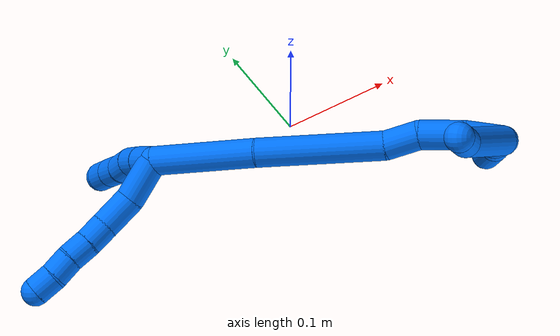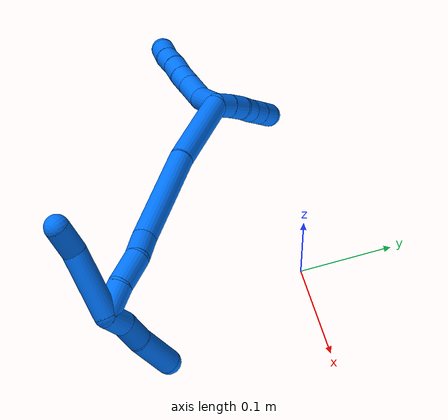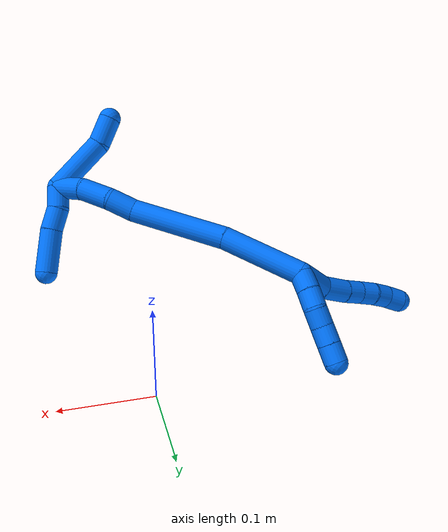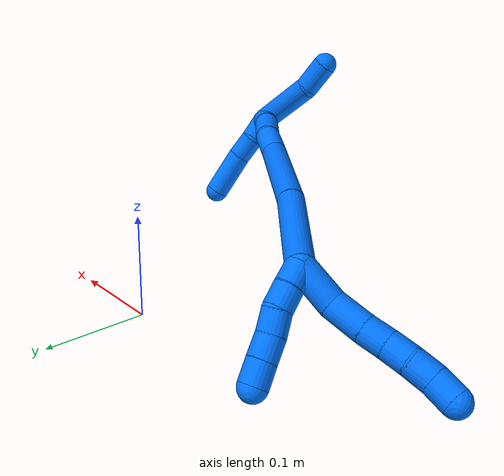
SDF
<sdf version="1.7">
 <world name="default">
  <model name="14">
   <static>0</static>
   <link name="14">
    <collision name="collision-cylinder-e_1_2_8">
     <pose>-0.015754 -0.00605 -0.00892 2.5456 -0.970764 -2.087</pose>
     <geometry><cylinder><radius>0.0125</radius><length>0.038177</length></cylinder></geometry>
     <surface>
      <friction><ode><mu>1.16</mu><mu2>1.16</mu2><slip1>0</slip1><slip2>0</slip2></ode></friction>
      <contact><ode><kp>1e+06</kp><kd>1</kd><max_vel>0</max_vel><min_depth>0.001</min_depth></ode></contact>
     </surface>
    </collision>
    <visual name="visual-cylinder-e_1_2_8">
     <pose>-0.015754 -0.00605 -0.00892 2.5456 -0.970764 -2.087</pose>
     <geometry><cylinder><radius>0.0125</radius><length>0.038177</length></cylinder></geometry>
     <material><ambient>0 0.462745 1 1</ambient></material>
    </visual>
    <collision name="collision-cylinder-e_2_8_9">
     <pose>-0.045141 -0.012023 -0.025442 -3.13133 -1.06214 3.12412</pose>
     <geometry><cylinder><radius>0.0125</radius><length>0.031219</length></cylinder></geometry>
     <surface>
      <friction><ode><mu>1.16</mu><mu2>1.16</mu2><slip1>0</slip1><slip2>0</slip2></ode></friction>
      <contact><ode><kp>1e+06</kp><kd>1</kd><max_vel>0</max_vel><min_depth>0.001</min_depth></ode></contact>
     </surface>
    </collision>
    <visual name="visual-cylinder-e_2_8_9">
     <pose>-0.045141 -0.012023 -0.025442 -3.13133 -1.06214 3.12412</pose>
     <geometry><cylinder><radius>0.0125</radius><length>0.031219</length></cylinder></geometry>
     <material><ambient>0 0.462745 1 1</ambient></material>
    </visual>
    <collision name="collision-cylinder-e_3_9_10">
     <pose>-0.067905 -0.011297 -0.037604 -3.00062 -1.10352 2.91319</pose>
     <geometry><cylinder><radius>0.0125</radius><length>0.020453</length></cylinder></geometry>
     <surface>
      <friction><ode><mu>1.16</mu><mu2>1.16</mu2><slip1>0</slip1><slip2>0</slip2></ode></friction>
      <contact><ode><kp>1e+06</kp><kd>1</kd><max_vel>0</max_vel><min_depth>0.001</min_depth></ode></contact>
     </surface>
    </collision>
    <visual name="visual-cylinder-e_3_9_10">
     <pose>-0.067905 -0.011297 -0.037604 -3.00062 -1.10352 2.91319</pose>
     <geometry><cylinder><radius>0.0125</radius><length>0.020453</length></cylinder></geometry>
     <material><ambient>0 0.462745 1 1</ambient></material>
    </visual>
    <collision name="collision-cylinder-e_4_10_11">
     <pose>-0.085557 -0.009597 -0.047339 -2.94069 -1.01611 2.78343</pose>
     <geometry><cylinder><radius>0.0125</radius><length>0.020049</length></cylinder></geometry>
     <surface>
      <friction><ode><mu>1.16</mu><mu2>1.16</mu2><slip1>0</slip1><slip2>0</slip2></ode></friction>
      <contact><ode><kp>1e+06</kp><kd>1</kd><max_vel>0</max_vel><min_depth>0.001</min_depth></ode></contact>
     </surface>
    </collision>
    <visual name="visual-cylinder-e_4_10_11">
     <pose>-0.085557 -0.009597 -0.047339 -2.94069 -1.01611 2.78343</pose>
     <geometry><cylinder><radius>0.0125</radius><length>0.020049</length></cylinder></geometry>
     <material><ambient>0 0.462745 1 1</ambient></material>
    </visual>
    <collision name="collision-cylinder-e_5_11_12">
     <pose>-0.102903 -0.00882 -0.057228 3.08286 -1.07933 -3.04359</pose>
     <geometry><cylinder><radius>0.0125</radius><length>0.020018</length></cylinder></geometry>
     <surface>
      <friction><ode><mu>1.16</mu><mu2>1.16</mu2><slip1>0</slip1><slip2>0</slip2></ode></friction>
      <contact><ode><kp>1e+06</kp><kd>1</kd><max_vel>0</max_vel><min_depth>0.001</min_depth></ode></contact>
     </surface>
    </collision>
    <visual name="visual-cylinder-e_5_11_12">
     <pose>-0.102903 -0.00882 -0.057228 3.08286 -1.07933 -3.04359</pose>
     <geometry><cylinder><radius>0.0125</radius><length>0.020018</length></cylinder></geometry>
     <material><ambient>0 0.462745 1 1</ambient></material>
    </visual>
    <collision name="collision-cylinder-e_6_12_6">
     <pose>-0.11958 -0.009258 -0.068199 3.11593 -0.897967 -3.08835</pose>
     <geometry><cylinder><radius>0.0125</radius><length>0.020084</length></cylinder></geometry>
     <surface>
      <friction><ode><mu>1.16</mu><mu2>1.16</mu2><slip1>0</slip1><slip2>0</slip2></ode></friction>
      <contact><ode><kp>1e+06</kp><kd>1</kd><max_vel>0</max_vel><min_depth>0.001</min_depth></ode></contact>
     </surface>
    </collision>
    <visual name="visual-cylinder-e_6_12_6">
     <pose>-0.11958 -0.009258 -0.068199 3.11593 -0.897967 -3.08835</pose>
     <geometry><cylinder><radius>0.0125</radius><length>0.020084</length></cylinder></geometry>
     <material><ambient>0 0.462745 1 1</ambient></material>
    </visual>
    <collision name="collision-cylinder-e_1_2_13">
     <pose>0.002167 -0.003741 -0.009017 2.7483 0.218418 1.00625</pose>
     <geometry><cylinder><radius>0.0125</radius><length>0.02</length></cylinder></geometry>
     <surface>
      <friction><ode><mu>1.16</mu><mu2>1.16</mu2><slip1>0</slip1><slip2>0</slip2></ode></friction>
      <contact><ode><kp>1e+06</kp><kd>1</kd><max_vel>0</max_vel><min_depth>0.001</min_depth></ode></contact>
     </surface>
    </collision>
    <visual name="visual-cylinder-e_1_2_13">
     <pose>0.002167 -0.003741 -0.009017 2.7483 0.218418 1.00625</pose>
     <geometry><cylinder><radius>0.0125</radius><length>0.02</length></cylinder></geometry>
     <material><ambient>0 0.462745 1 1</ambient></material>
    </visual>
    <collision name="collision-cylinder-e_2_13_14">
     <pose>0.006266 -0.01191 -0.02679 2.67342 0.19441 0.776367</pose>
     <geometry><cylinder><radius>0.0125</radius><length>0.02</length></cylinder></geometry>
     <surface>
      <friction><ode><mu>1.16</mu><mu2>1.16</mu2><slip1>0</slip1><slip2>0</slip2></ode></friction>
      <contact><ode><kp>1e+06</kp><kd>1</kd><max_vel>0</max_vel><min_depth>0.001</min_depth></ode></contact>
     </surface>
    </collision>
    <visual name="visual-cylinder-e_2_13_14">
     <pose>0.006266 -0.01191 -0.02679 2.67342 0.19441 0.776367</pose>
     <geometry><cylinder><radius>0.0125</radius><length>0.02</length></cylinder></geometry>
     <material><ambient>0 0.462745 1 1</ambient></material>
    </visual>
    <collision name="collision-cylinder-e_3_14_15">
     <pose>0.007897 -0.021877 -0.043866 2.55425 -0.030055 -0.099309</pose>
     <geometry><cylinder><radius>0.0125</radius><length>0.02</length></cylinder></geometry>
     <surface>
      <friction><ode><mu>1.16</mu><mu2>1.16</mu2><slip1>0</slip1><slip2>0</slip2></ode></friction>
      <contact><ode><kp>1e+06</kp><kd>1</kd><max_vel>0</max_vel><min_depth>0.001</min_depth></ode></contact>
     </surface>
    </collision>
    <visual name="visual-cylinder-e_3_14_15">
     <pose>0.007897 -0.021877 -0.043866 2.55425 -0.030055 -0.099309</pose>
     <geometry><cylinder><radius>0.0125</radius><length>0.02</length></cylinder></geometry>
     <material><ambient>0 0.462745 1 1</ambient></material>
    </visual>
    <collision name="collision-cylinder-e_4_15_16">
     <pose>0.008387 -0.032344 -0.060852 2.62441 0.079127 0.297094</pose>
     <geometry><cylinder><radius>0.0125</radius><length>0.02</length></cylinder></geometry>
     <surface>
      <friction><ode><mu>1.16</mu><mu2>1.16</mu2><slip1>0</slip1><slip2>0</slip2></ode></friction>
      <contact><ode><kp>1e+06</kp><kd>1</kd><max_vel>0</max_vel><min_depth>0.001</min_depth></ode></contact>
     </surface>
    </collision>
    <visual name="visual-cylinder-e_4_15_16">
     <pose>0.008387 -0.032344 -0.060852 2.62441 0.079127 0.297094</pose>
     <geometry><cylinder><radius>0.0125</radius><length>0.02</length></cylinder></geometry>
     <material><ambient>0 0.462745 1 1</ambient></material>
    </visual>
    <collision name="collision-cylinder-e_5_16_5">
     <pose>0.009789 -0.04236 -0.078104 2.60682 0.061175 0.222462</pose>
     <geometry><cylinder><radius>0.0125</radius><length>0.02</length></cylinder></geometry>
     <surface>
      <friction><ode><mu>1.16</mu><mu2>1.16</mu2><slip1>0</slip1><slip2>0</slip2></ode></friction>
      <contact><ode><kp>1e+06</kp><kd>1</kd><max_vel>0</max_vel><min_depth>0.001</min_depth></ode></contact>
     </surface>
    </collision>
    <visual name="visual-cylinder-e_5_16_5">
     <pose>0.009789 -0.04236 -0.078104 2.60682 0.061175 0.222462</pose>
     <geometry><cylinder><radius>0.0125</radius><length>0.02</length></cylinder></geometry>
     <material><ambient>0 0.462745 1 1</ambient></material>
    </visual>
    <collision name="collision-cylinder-e_1_2_17">
     <pose>0.010763 -0.007843 0.043682 0.177651 0.237918 0.021289</pose>
     <geometry><cylinder><radius>0.0125</radius><length>0.091334</length></cylinder></geometry>
     <surface>
      <friction><ode><mu>1.16</mu><mu2>1.16</mu2><slip1>0</slip1><slip2>0</slip2></ode></friction>
      <contact><ode><kp>1e+06</kp><kd>1</kd><max_vel>0</max_vel><min_depth>0.001</min_depth></ode></contact>
     </surface>
    </collision>
    <visual name="visual-cylinder-e_1_2_17">
     <pose>0.010763 -0.007843 0.043682 0.177651 0.237918 0.021289</pose>
     <geometry><cylinder><radius>0.0125</radius><length>0.091334</length></cylinder></geometry>
     <material><ambient>0 0.462745 1 1</ambient></material>
    </visual>
    <collision name="collision-cylinder-e_2_17_18">
     <pose>0.037089 -0.031545 0.137177 0.308236 0.28935 0.045259</pose>
     <geometry><cylinder><radius>0.0125</radius><length>0.109088</length></cylinder></geometry>
     <surface>
      <friction><ode><mu>1.16</mu><mu2>1.16</mu2><slip1>0</slip1><slip2>0</slip2></ode></friction>
      <contact><ode><kp>1e+06</kp><kd>1</kd><max_vel>0</max_vel><min_depth>0.001</min_depth></ode></contact>
     </surface>
    </collision>
    <visual name="visual-cylinder-e_2_17_18">
     <pose>0.037089 -0.031545 0.137177 0.308236 0.28935 0.045259</pose>
     <geometry><cylinder><radius>0.0125</radius><length>0.109088</length></cylinder></geometry>
     <material><ambient>0 0.462745 1 1</ambient></material>
    </visual>
    <collision name="collision-cylinder-e_3_18_19">
     <pose>0.059059 -0.048446 0.200475 0.07702 0.442448 0.01733</pose>
     <geometry><cylinder><radius>0.0125</radius><length>0.029932</length></cylinder></geometry>
     <surface>
      <friction><ode><mu>1.16</mu><mu2>1.16</mu2><slip1>0</slip1><slip2>0</slip2></ode></friction>
      <contact><ode><kp>1e+06</kp><kd>1</kd><max_vel>0</max_vel><min_depth>0.001</min_depth></ode></contact>
     </surface>
    </collision>
    <visual name="visual-cylinder-e_3_18_19">
     <pose>0.059059 -0.048446 0.200475 0.07702 0.442448 0.01733</pose>
     <geometry><cylinder><radius>0.0125</radius><length>0.029932</length></cylinder></geometry>
     <material><ambient>0 0.462745 1 1</ambient></material>
    </visual>
    <collision name="collision-cylinder-e_4_19_20">
     <pose>0.069123 -0.054418 0.231256 0.277771 0.200538 0.028125</pose>
     <geometry><cylinder><radius>0.0125</radius><length>0.036706</length></cylinder></geometry>
     <surface>
      <friction><ode><mu>1.16</mu><mu2>1.16</mu2><slip1>0</slip1><slip2>0</slip2></ode></friction>
      <contact><ode><kp>1e+06</kp><kd>1</kd><max_vel>0</max_vel><min_depth>0.001</min_depth></ode></contact>
     </surface>
    </collision>
    <visual name="visual-cylinder-e_4_19_20">
     <pose>0.069123 -0.054418 0.231256 0.277771 0.200538 0.028125</pose>
     <geometry><cylinder><radius>0.0125</radius><length>0.036706</length></cylinder></geometry>
     <material><ambient>0 0.462745 1 1</ambient></material>
    </visual>
    <collision name="collision-cylinder-e_5_20_1">
     <pose>0.075895 -0.067576 0.262475 0.533615 0.190339 0.05217</pose>
     <geometry><cylinder><radius>0.0125</radius><length>0.03294</length></cylinder></geometry>
     <surface>
      <friction><ode><mu>1.16</mu><mu2>1.16</mu2><slip1>0</slip1><slip2>0</slip2></ode></friction>
      <contact><ode><kp>1e+06</kp><kd>1</kd><max_vel>0</max_vel><min_depth>0.001</min_depth></ode></contact>
     </surface>
    </collision>
    <visual name="visual-cylinder-e_5_20_1">
     <pose>0.075895 -0.067576 0.262475 0.533615 0.190339 0.05217</pose>
     <geometry><cylinder><radius>0.0125</radius><length>0.03294</length></cylinder></geometry>
     <material><ambient>0 0.462745 1 1</ambient></material>
    </visual>
    <collision name="collision-cylinder-e_1_1_21">
     <pose>0.059758 -0.047519 0.276843 -1.55511 -0.597599 0.588829</pose>
     <geometry><cylinder><radius>0.0125</radius><length>0.068434</length></cylinder></geometry>
     <surface>
      <friction><ode><mu>1.16</mu><mu2>1.16</mu2><slip1>0</slip1><slip2>0</slip2></ode></friction>
      <contact><ode><kp>1e+06</kp><kd>1</kd><max_vel>0</max_vel><min_depth>0.001</min_depth></ode></contact>
     </surface>
    </collision>
    <visual name="visual-cylinder-e_1_1_21">
     <pose>0.059758 -0.047519 0.276843 -1.55511 -0.597599 0.588829</pose>
     <geometry><cylinder><radius>0.0125</radius><length>0.068434</length></cylinder></geometry>
     <material><ambient>0 0.462745 1 1</ambient></material>
    </visual>
    <collision name="collision-cylinder-e_2_21_4">
     <pose>0.034234 -0.005621 0.282228 -1.22263 -0.408687 0.288476</pose>
     <geometry><cylinder><radius>0.0125</radius><length>0.031566</length></cylinder></geometry>
     <surface>
      <friction><ode><mu>1.16</mu><mu2>1.16</mu2><slip1>0</slip1><slip2>0</slip2></ode></friction>
      <contact><ode><kp>1e+06</kp><kd>1</kd><max_vel>0</max_vel><min_depth>0.001</min_depth></ode></contact>
     </surface>
    </collision>
    <visual name="visual-cylinder-e_2_21_4">
     <pose>0.034234 -0.005621 0.282228 -1.22263 -0.408687 0.288476</pose>
     <geometry><cylinder><radius>0.0125</radius><length>0.031566</length></cylinder></geometry>
     <material><ambient>0 0.462745 1 1</ambient></material>
    </visual>
    <collision name="collision-cylinder-e_1_1_22">
     <pose>0.082691 -0.084225 0.267776 2.36795 0.296335 0.702468</pose>
     <geometry><cylinder><radius>0.0125</radius><length>0.025209</length></cylinder></geometry>
     <surface>
      <friction><ode><mu>1.16</mu><mu2>1.16</mu2><slip1>0</slip1><slip2>0</slip2></ode></friction>
      <contact><ode><kp>1e+06</kp><kd>1</kd><max_vel>0</max_vel><min_depth>0.001</min_depth></ode></contact>
     </surface>
    </collision>
    <visual name="visual-cylinder-e_1_1_22">
     <pose>0.082691 -0.084225 0.267776 2.36795 0.296335 0.702468</pose>
     <geometry><cylinder><radius>0.0125</radius><length>0.025209</length></cylinder></geometry>
     <material><ambient>0 0.462745 1 1</ambient></material>
    </visual>
    <collision name="collision-cylinder-e_2_22_23">
     <pose>0.091335 -0.103126 0.253514 2.06444 0.395202 0.646657</pose>
     <geometry><cylinder><radius>0.0125</radius><length>0.025783</length></cylinder></geometry>
     <surface>
      <friction><ode><mu>1.16</mu><mu2>1.16</mu2><slip1>0</slip1><slip2>0</slip2></ode></friction>
      <contact><ode><kp>1e+06</kp><kd>1</kd><max_vel>0</max_vel><min_depth>0.001</min_depth></ode></contact>
     </surface>
    </collision>
    <visual name="visual-cylinder-e_2_22_23">
     <pose>0.091335 -0.103126 0.253514 2.06444 0.395202 0.646657</pose>
     <geometry><cylinder><radius>0.0125</radius><length>0.025783</length></cylinder></geometry>
     <material><ambient>0 0.462745 1 1</ambient></material>
    </visual>
    <collision name="collision-cylinder-e_3_23_3">
     <pose>0.103719 -0.132182 0.233727 2.22167 0.307663 0.606666</pose>
     <geometry><cylinder><radius>0.0125</radius><length>0.049008</length></cylinder></geometry>
     <surface>
      <friction><ode><mu>1.16</mu><mu2>1.16</mu2><slip1>0</slip1><slip2>0</slip2></ode></friction>
      <contact><ode><kp>1e+06</kp><kd>1</kd><max_vel>0</max_vel><min_depth>0.001</min_depth></ode></contact>
     </surface>
    </collision>
    <visual name="visual-cylinder-e_3_23_3">
     <pose>0.103719 -0.132182 0.233727 2.22167 0.307663 0.606666</pose>
     <geometry><cylinder><radius>0.0125</radius><length>0.049008</length></cylinder></geometry>
     <material><ambient>0 0.462745 1 1</ambient></material>
    </visual>
    <collision name="collision-sphere-3">
     <pose>0.11114 -0.150761 0.219578 0 -0 0</pose>
     <geometry><sphere><radius>0.0125</radius></sphere></geometry>
     <surface>
      <friction><ode><mu>1.16</mu><mu2>1.16</mu2><slip1>0</slip1><slip2>0</slip2></ode></friction>
      <contact><ode><kp>1e+06</kp><kd>1</kd><max_vel>0</max_vel><min_depth>0.001</min_depth></ode></contact>
     </surface>
    </collision>
    <visual name="visual-sphere-3">
     <pose>0.11114 -0.150761 0.219578 0 -0 0</pose>
     <geometry><sphere><radius>0.0125</radius></sphere></geometry>
     <material><ambient>0 0.462745 1 1</ambient></material>
    </visual>
    <collision name="collision-sphere-23">
     <pose>0.096298 -0.113603 0.247877 0 -0 0</pose>
     <geometry><sphere><radius>0.0125</radius></sphere></geometry>
     <surface>
      <friction><ode><mu>1.16</mu><mu2>1.16</mu2><slip1>0</slip1><slip2>0</slip2></ode></friction>
      <contact><ode><kp>1e+06</kp><kd>1</kd><max_vel>0</max_vel><min_depth>0.001</min_depth></ode></contact>
     </surface>
    </collision>
    <visual name="visual-sphere-23">
     <pose>0.096298 -0.113603 0.247877 0 -0 0</pose>
     <geometry><sphere><radius>0.0125</radius></sphere></geometry>
     <material><ambient>0 0.462745 1 1</ambient></material>
    </visual>
    <collision name="collision-sphere-22">
     <pose>0.086372 -0.092648 0.259152 0 -0 0</pose>
     <geometry><sphere><radius>0.0125</radius></sphere></geometry>
     <surface>
      <friction><ode><mu>1.16</mu><mu2>1.16</mu2><slip1>0</slip1><slip2>0</slip2></ode></friction>
      <contact><ode><kp>1e+06</kp><kd>1</kd><max_vel>0</max_vel><min_depth>0.001</min_depth></ode></contact>
     </surface>
    </collision>
    <visual name="visual-sphere-22">
     <pose>0.086372 -0.092648 0.259152 0 -0 0</pose>
     <geometry><sphere><radius>0.0125</radius></sphere></geometry>
     <material><ambient>0 0.462745 1 1</ambient></material>
    </visual>
    <collision name="collision-sphere-4">
     <pose>0.027961 0.007993 0.287169 0 -0 0</pose>
     <geometry><sphere><radius>0.0125</radius></sphere></geometry>
     <surface>
      <friction><ode><mu>1.16</mu><mu2>1.16</mu2><slip1>0</slip1><slip2>0</slip2></ode></friction>
      <contact><ode><kp>1e+06</kp><kd>1</kd><max_vel>0</max_vel><min_depth>0.001</min_depth></ode></contact>
     </surface>
    </collision>
    <visual name="visual-sphere-4">
     <pose>0.027961 0.007993 0.287169 0 -0 0</pose>
     <geometry><sphere><radius>0.0125</radius></sphere></geometry>
     <material><ambient>0 0.462745 1 1</ambient></material>
    </visual>
    <collision name="collision-sphere-21">
     <pose>0.040506 -0.019235 0.277287 0 -0 0</pose>
     <geometry><sphere><radius>0.0125</radius></sphere></geometry>
     <surface>
      <friction><ode><mu>1.16</mu><mu2>1.16</mu2><slip1>0</slip1><slip2>0</slip2></ode></friction>
      <contact><ode><kp>1e+06</kp><kd>1</kd><max_vel>0</max_vel><min_depth>0.001</min_depth></ode></contact>
     </surface>
    </collision>
    <visual name="visual-sphere-21">
     <pose>0.040506 -0.019235 0.277287 0 -0 0</pose>
     <geometry><sphere><radius>0.0125</radius></sphere></geometry>
     <material><ambient>0 0.462745 1 1</ambient></material>
    </visual>
    <collision name="collision-sphere-1">
     <pose>0.079011 -0.075802 0.276399 0 -0 0</pose>
     <geometry><sphere><radius>0.0125</radius></sphere></geometry>
     <surface>
      <friction><ode><mu>1.16</mu><mu2>1.16</mu2><slip1>0</slip1><slip2>0</slip2></ode></friction>
      <contact><ode><kp>1e+06</kp><kd>1</kd><max_vel>0</max_vel><min_depth>0.001</min_depth></ode></contact>
     </surface>
    </collision>
    <visual name="visual-sphere-1">
     <pose>0.079011 -0.075802 0.276399 0 -0 0</pose>
     <geometry><sphere><radius>0.0125</radius></sphere></geometry>
     <material><ambient>0 0.462745 1 1</ambient></material>
    </visual>
    <collision name="collision-sphere-12">
     <pose>-0.111727 -0.009097 -0.061943 0 -0 0</pose>
     <geometry><sphere><radius>0.0125</radius></sphere></geometry>
     <surface>
      <friction><ode><mu>1.16</mu><mu2>1.16</mu2><slip1>0</slip1><slip2>0</slip2></ode></friction>
      <contact><ode><kp>1e+06</kp><kd>1</kd><max_vel>0</max_vel><min_depth>0.001</min_depth></ode></contact>
     </surface>
    </collision>
    <visual name="visual-sphere-12">
     <pose>-0.111727 -0.009097 -0.061943 0 -0 0</pose>
     <geometry><sphere><radius>0.0125</radius></sphere></geometry>
     <material><ambient>0 0.462745 1 1</ambient></material>
    </visual>
    <collision name="collision-sphere-11">
     <pose>-0.094078 -0.008543 -0.052512 0 -0 0</pose>
     <geometry><sphere><radius>0.0125</radius></sphere></geometry>
     <surface>
      <friction><ode><mu>1.16</mu><mu2>1.16</mu2><slip1>0</slip1><slip2>0</slip2></ode></friction>
      <contact><ode><kp>1e+06</kp><kd>1</kd><max_vel>0</max_vel><min_depth>0.001</min_depth></ode></contact>
     </surface>
    </collision>
    <visual name="visual-sphere-11">
     <pose>-0.094078 -0.008543 -0.052512 0 -0 0</pose>
     <geometry><sphere><radius>0.0125</radius></sphere></geometry>
     <material><ambient>0 0.462745 1 1</ambient></material>
    </visual>
    <collision name="collision-sphere-10">
     <pose>-0.077035 -0.01065 -0.042165 0 -0 0</pose>
     <geometry><sphere><radius>0.0125</radius></sphere></geometry>
     <surface>
      <friction><ode><mu>1.16</mu><mu2>1.16</mu2><slip1>0</slip1><slip2>0</slip2></ode></friction>
      <contact><ode><kp>1e+06</kp><kd>1</kd><max_vel>0</max_vel><min_depth>0.001</min_depth></ode></contact>
     </surface>
    </collision>
    <visual name="visual-sphere-10">
     <pose>-0.077035 -0.01065 -0.042165 0 -0 0</pose>
     <geometry><sphere><radius>0.0125</radius></sphere></geometry>
     <material><ambient>0 0.462745 1 1</ambient></material>
    </visual>
    <collision name="collision-sphere-9">
     <pose>-0.058774 -0.011945 -0.033043 0 -0 0</pose>
     <geometry><sphere><radius>0.0125</radius></sphere></geometry>
     <surface>
      <friction><ode><mu>1.16</mu><mu2>1.16</mu2><slip1>0</slip1><slip2>0</slip2></ode></friction>
      <contact><ode><kp>1e+06</kp><kd>1</kd><max_vel>0</max_vel><min_depth>0.001</min_depth></ode></contact>
     </surface>
    </collision>
    <visual name="visual-sphere-9">
     <pose>-0.058774 -0.011945 -0.033043 0 -0 0</pose>
     <geometry><sphere><radius>0.0125</radius></sphere></geometry>
     <material><ambient>0 0.462745 1 1</ambient></material>
    </visual>
    <collision name="collision-sphere-2">
     <geometry><sphere><radius>0.0125</radius></sphere></geometry>
     <surface>
      <friction><ode><mu>1.16</mu><mu2>1.16</mu2><slip1>0</slip1><slip2>0</slip2></ode></friction>
      <contact><ode><kp>1e+06</kp><kd>1</kd><max_vel>0</max_vel><min_depth>0.001</min_depth></ode></contact>
     </surface>
    </collision>
    <visual name="visual-sphere-2">
     <geometry><sphere><radius>0.0125</radius></sphere></geometry>
     <material><ambient>0 0.462745 1 1</ambient></material>
    </visual>
    <collision name="collision-sphere-19">
     <pose>0.065467 -0.049486 0.21396 0 -0 0</pose>
     <geometry><sphere><radius>0.0125</radius></sphere></geometry>
     <surface>
      <friction><ode><mu>1.16</mu><mu2>1.16</mu2><slip1>0</slip1><slip2>0</slip2></ode></friction>
      <contact><ode><kp>1e+06</kp><kd>1</kd><max_vel>0</max_vel><min_depth>0.001</min_depth></ode></contact>
     </surface>
    </collision>
    <visual name="visual-sphere-19">
     <pose>0.065467 -0.049486 0.21396 0 -0 0</pose>
     <geometry><sphere><radius>0.0125</radius></sphere></geometry>
     <material><ambient>0 0.462745 1 1</ambient></material>
    </visual>
    <collision name="collision-sphere-8">
     <pose>-0.031508 -0.012101 -0.017841 0 -0 0</pose>
     <geometry><sphere><radius>0.0125</radius></sphere></geometry>
     <surface>
      <friction><ode><mu>1.16</mu><mu2>1.16</mu2><slip1>0</slip1><slip2>0</slip2></ode></friction>
      <contact><ode><kp>1e+06</kp><kd>1</kd><max_vel>0</max_vel><min_depth>0.001</min_depth></ode></contact>
     </surface>
    </collision>
    <visual name="visual-sphere-8">
     <pose>-0.031508 -0.012101 -0.017841 0 -0 0</pose>
     <geometry><sphere><radius>0.0125</radius></sphere></geometry>
     <material><ambient>0 0.462745 1 1</ambient></material>
    </visual>
    <collision name="collision-sphere-6">
     <pose>-0.127434 -0.009419 -0.074455 0 -0 0</pose>
     <geometry><sphere><radius>0.0125</radius></sphere></geometry>
     <surface>
      <friction><ode><mu>1.16</mu><mu2>1.16</mu2><slip1>0</slip1><slip2>0</slip2></ode></friction>
      <contact><ode><kp>1e+06</kp><kd>1</kd><max_vel>0</max_vel><min_depth>0.001</min_depth></ode></contact>
     </surface>
    </collision>
    <visual name="visual-sphere-6">
     <pose>-0.127434 -0.009419 -0.074455 0 -0 0</pose>
     <geometry><sphere><radius>0.0125</radius></sphere></geometry>
     <material><ambient>0 0.462745 1 1</ambient></material>
    </visual>
    <collision name="collision-sphere-13">
     <pose>0.004334 -0.007483 -0.018034 0 -0 0</pose>
     <geometry><sphere><radius>0.0125</radius></sphere></geometry>
     <surface>
      <friction><ode><mu>1.16</mu><mu2>1.16</mu2><slip1>0</slip1><slip2>0</slip2></ode></friction>
      <contact><ode><kp>1e+06</kp><kd>1</kd><max_vel>0</max_vel><min_depth>0.001</min_depth></ode></contact>
     </surface>
    </collision>
    <visual name="visual-sphere-13">
     <pose>0.004334 -0.007483 -0.018034 0 -0 0</pose>
     <geometry><sphere><radius>0.0125</radius></sphere></geometry>
     <material><ambient>0 0.462745 1 1</ambient></material>
    </visual>
    <collision name="collision-sphere-14">
     <pose>0.008197 -0.016338 -0.035546 0 -0 0</pose>
     <geometry><sphere><radius>0.0125</radius></sphere></geometry>
     <surface>
      <friction><ode><mu>1.16</mu><mu2>1.16</mu2><slip1>0</slip1><slip2>0</slip2></ode></friction>
      <contact><ode><kp>1e+06</kp><kd>1</kd><max_vel>0</max_vel><min_depth>0.001</min_depth></ode></contact>
     </surface>
    </collision>
    <visual name="visual-sphere-14">
     <pose>0.008197 -0.016338 -0.035546 0 -0 0</pose>
     <geometry><sphere><radius>0.0125</radius></sphere></geometry>
     <material><ambient>0 0.462745 1 1</ambient></material>
    </visual>
    <collision name="collision-sphere-15">
     <pose>0.007596 -0.027416 -0.052187 0 -0 0</pose>
     <geometry><sphere><radius>0.0125</radius></sphere></geometry>
     <surface>
      <friction><ode><mu>1.16</mu><mu2>1.16</mu2><slip1>0</slip1><slip2>0</slip2></ode></friction>
      <contact><ode><kp>1e+06</kp><kd>1</kd><max_vel>0</max_vel><min_depth>0.001</min_depth></ode></contact>
     </surface>
    </collision>
    <visual name="visual-sphere-15">
     <pose>0.007596 -0.027416 -0.052187 0 -0 0</pose>
     <geometry><sphere><radius>0.0125</radius></sphere></geometry>
     <material><ambient>0 0.462745 1 1</ambient></material>
    </visual>
    <collision name="collision-sphere-16">
     <pose>0.009177 -0.037273 -0.069517 0 -0 0</pose>
     <geometry><sphere><radius>0.0125</radius></sphere></geometry>
     <surface>
      <friction><ode><mu>1.16</mu><mu2>1.16</mu2><slip1>0</slip1><slip2>0</slip2></ode></friction>
      <contact><ode><kp>1e+06</kp><kd>1</kd><max_vel>0</max_vel><min_depth>0.001</min_depth></ode></contact>
     </surface>
    </collision>
    <visual name="visual-sphere-16">
     <pose>0.009177 -0.037273 -0.069517 0 -0 0</pose>
     <geometry><sphere><radius>0.0125</radius></sphere></geometry>
     <material><ambient>0 0.462745 1 1</ambient></material>
    </visual>
    <collision name="collision-sphere-5">
     <pose>0.0104 -0.047447 -0.086692 0 -0 0</pose>
     <geometry><sphere><radius>0.0125</radius></sphere></geometry>
     <surface>
      <friction><ode><mu>1.16</mu><mu2>1.16</mu2><slip1>0</slip1><slip2>0</slip2></ode></friction>
      <contact><ode><kp>1e+06</kp><kd>1</kd><max_vel>0</max_vel><min_depth>0.001</min_depth></ode></contact>
     </surface>
    </collision>
    <visual name="visual-sphere-5">
     <pose>0.0104 -0.047447 -0.086692 0 -0 0</pose>
     <geometry><sphere><radius>0.0125</radius></sphere></geometry>
     <material><ambient>0 0.462745 1 1</ambient></material>
    </visual>
    <collision name="collision-sphere-17">
     <pose>0.021526 -0.015686 0.087364 0 -0 0</pose>
     <geometry><sphere><radius>0.0125</radius></sphere></geometry>
     <surface>
      <friction><ode><mu>1.16</mu><mu2>1.16</mu2><slip1>0</slip1><slip2>0</slip2></ode></friction>
      <contact><ode><kp>1e+06</kp><kd>1</kd><max_vel>0</max_vel><min_depth>0.001</min_depth></ode></contact>
     </surface>
    </collision>
    <visual name="visual-sphere-17">
     <pose>0.021526 -0.015686 0.087364 0 -0 0</pose>
     <geometry><sphere><radius>0.0125</radius></sphere></geometry>
     <material><ambient>0 0.462745 1 1</ambient></material>
    </visual>
    <collision name="collision-sphere-18">
     <pose>0.052652 -0.047405 0.18699 0 -0 0</pose>
     <geometry><sphere><radius>0.0125</radius></sphere></geometry>
     <surface>
      <friction><ode><mu>1.16</mu><mu2>1.16</mu2><slip1>0</slip1><slip2>0</slip2></ode></friction>
      <contact><ode><kp>1e+06</kp><kd>1</kd><max_vel>0</max_vel><min_depth>0.001</min_depth></ode></contact>
     </surface>
    </collision>
    <visual name="visual-sphere-18">
     <pose>0.052652 -0.047405 0.18699 0 -0 0</pose>
     <geometry><sphere><radius>0.0125</radius></sphere></geometry>
     <material><ambient>0 0.462745 1 1</ambient></material>
    </visual>
    <collision name="collision-sphere-20">
     <pose>0.072779 -0.05935 0.248551 0 -0 0</pose>
     <geometry><sphere><radius>0.0125</radius></sphere></geometry>
     <surface>
      <friction><ode><mu>1.16</mu><mu2>1.16</mu2><slip1>0</slip1><slip2>0</slip2></ode></friction>
      <contact><ode><kp>1e+06</kp><kd>1</kd><max_vel>0</max_vel><min_depth>0.001</min_depth></ode></contact>
     </surface>
    </collision>
    <visual name="visual-sphere-20">
     <pose>0.072779 -0.05935 0.248551 0 -0 0</pose>
     <geometry><sphere><radius>0.0125</radius></sphere></geometry>
     <material><ambient>0 0.462745 1 1</ambient></material>
    </visual>
    <inertial>
     <pose>0.02352 -0.037543 0.113258 0 -0 0</pose>
     <mass>0.75</mass>
     <inertia>
      <ixx>0.000247</ixx>
      <ixy>0</ixy>
      <ixz>0</ixz>
      <iyy>0.000222</iyy>
      <iyz>0</iyz>
      <izz>1.8e-05</izz>
     </inertia>
    </inertial>
   </link>
   <pose>-0.165696 -0.043403 0.095718 1.17308 -0.223239 0.689631</pose>
  </model>
 </world>
</sdf>
